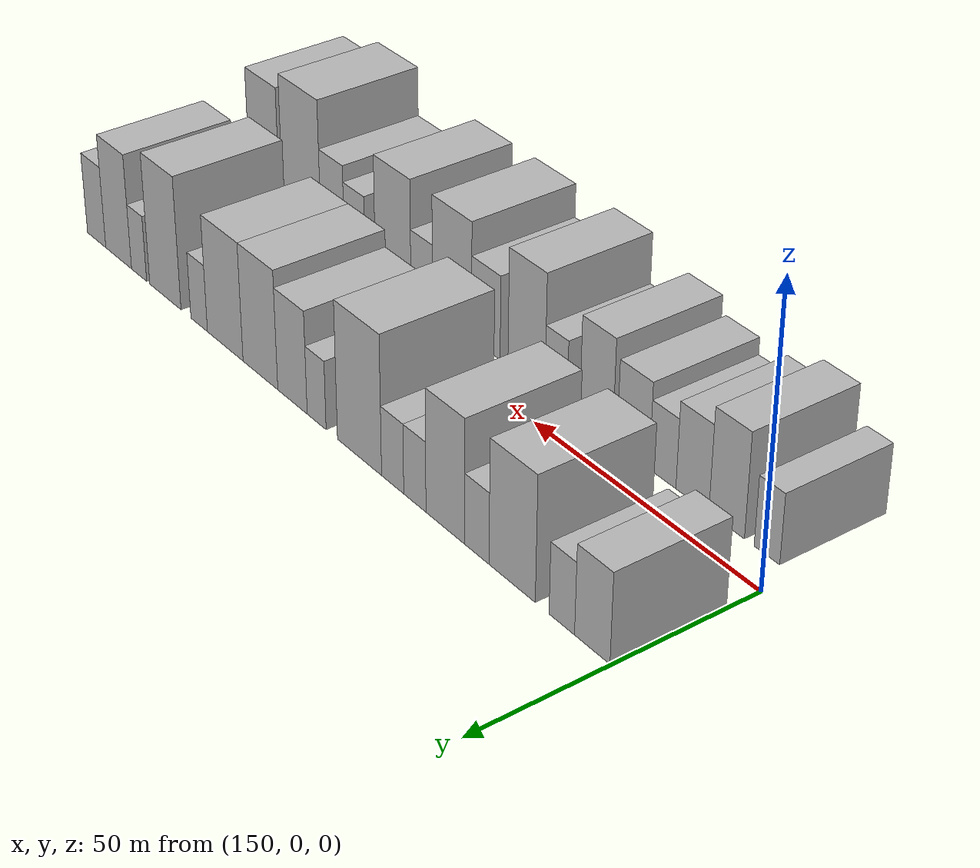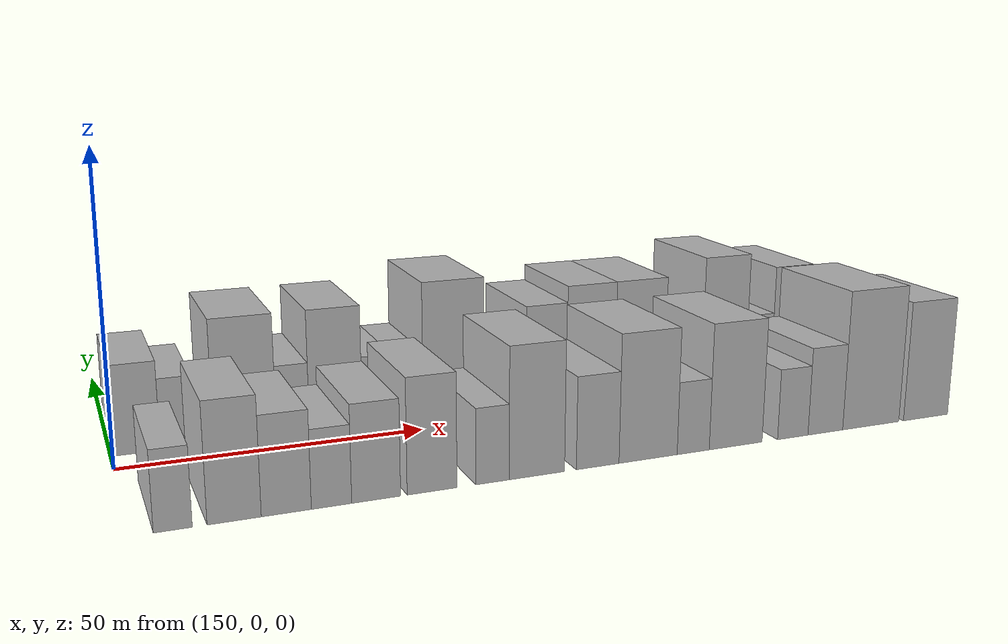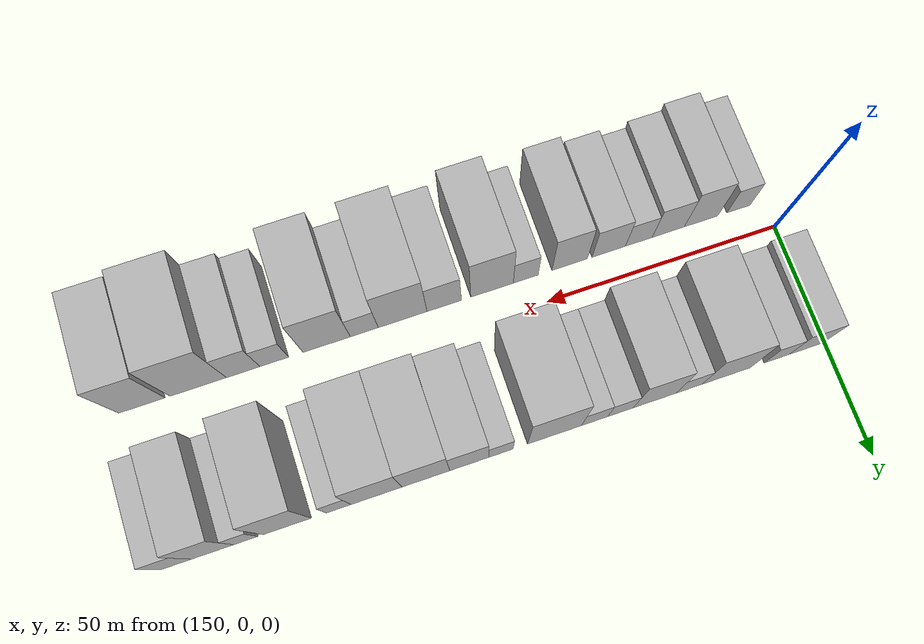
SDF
<sdf version="1.6">
 <world name="default">
  <model name="building_17">
   <static>1</static>
   <pose>153.9549 16.0000 0 0.000000 0.000000 1.570796</pose>
   <link name="link">
    <pose>0 0 7.50 0 0 0</pose>
    <collision name="collision"><geometry><box><size>20.0000 7.3951 15.0000</size></box></geometry></collision>
    <visual name="visual">
     <cast_shadows>0</cast_shadows>
     <geometry><box><size>20.0000 7.3951 15.0000</size></box></geometry>
     <material>
      <script>
       <uri>model://HANNAS_wall/materials/scripts</uri>
       <uri>model://HANNAS_wall/materials/textures</uri>
       <name>vrc/HANNAS_wall</name>
      </script>
     </material>
    </visual>
   </link>
  </model>
  <model name="building_18">
   <static>1</static>
   <pose>160.3797 16.0000 0 0.000000 0.000000 1.570796</pose>
   <link name="link">
    <pose>0 0 6.00 0 0 0</pose>
    <collision name="collision"><geometry><box><size>20.0000 5.4544 12.0000</size></box></geometry></collision>
    <visual name="visual">
     <cast_shadows>0</cast_shadows>
     <geometry><box><size>20.0000 5.4544 12.0000</size></box></geometry>
     <material>
      <script>
       <uri>model://HANNAS_wall/materials/scripts</uri>
       <uri>model://HANNAS_wall/materials/textures</uri>
       <name>vrc/HANNAS_wall</name>
      </script>
     </material>
    </visual>
   </link>
  </model>
  <model name="building_19">
   <static>1</static>
   <pose>171.2821 16.0000 0 0.000000 0.000000 1.570796</pose>
   <link name="link">
    <pose>0 0 10.50 0 0 0</pose>
    <collision name="collision"><geometry><box><size>20.0000 10.3504 21.0000</size></box></geometry></collision>
    <visual name="visual">
     <cast_shadows>0</cast_shadows>
     <geometry><box><size>20.0000 10.3504 21.0000</size></box></geometry>
     <material>
      <script>
       <uri>model://HANNAS_wall/materials/scripts</uri>
       <uri>model://HANNAS_wall/materials/textures</uri>
       <name>vrc/HANNAS_wall</name>
      </script>
     </material>
    </visual>
   </link>
  </model>
  <model name="building_20">
   <static>1</static>
   <pose>179.2618 16.0000 0 0.000000 0.000000 1.570796</pose>
   <link name="link">
    <pose>0 0 6.00 0 0 0</pose>
    <collision name="collision"><geometry><box><size>20.0000 5.6091 12.0000</size></box></geometry></collision>
    <visual name="visual">
     <cast_shadows>0</cast_shadows>
     <geometry><box><size>20.0000 5.6091 12.0000</size></box></geometry>
     <material>
      <script>
       <uri>model://HANNAS_wall/materials/scripts</uri>
       <uri>model://HANNAS_wall/materials/textures</uri>
       <name>vrc/HANNAS_wall</name>
      </script>
     </material>
    </visual>
   </link>
  </model>
  <model name="building_21">
   <static>1</static>
   <pose>186.6494 16.0000 0 0.000000 0.000000 1.570796</pose>
   <link name="link">
    <pose>0 0 10.50 0 0 0</pose>
    <collision name="collision"><geometry><box><size>20.0000 9.1661 21.0000</size></box></geometry></collision>
    <visual name="visual">
     <cast_shadows>0</cast_shadows>
     <geometry><box><size>20.0000 9.1661 21.0000</size></box></geometry>
     <material>
      <script>
       <uri>model://HANNAS_wall/materials/scripts</uri>
       <uri>model://HANNAS_wall/materials/textures</uri>
       <name>vrc/HANNAS_wall</name>
      </script>
     </material>
    </visual>
   </link>
  </model>
  <model name="building_22">
   <static>1</static>
   <pose>193.9422 16.0000 0 0.000000 0.000000 1.570796</pose>
   <link name="link">
    <pose>0 0 6.00 0 0 0</pose>
    <collision name="collision"><geometry><box><size>20.0000 5.4194 12.0000</size></box></geometry></collision>
    <visual name="visual">
     <cast_shadows>0</cast_shadows>
     <geometry><box><size>20.0000 5.4194 12.0000</size></box></geometry>
     <material>
      <script>
       <uri>model://HANNAS_wall/materials/scripts</uri>
       <uri>model://HANNAS_wall/materials/textures</uri>
       <name>vrc/HANNAS_wall</name>
      </script>
     </material>
    </visual>
   </link>
  </model>
  <model name="building_23">
   <static>1</static>
   <pose>199.4075 16.0000 0 0.000000 0.000000 1.570796</pose>
   <link name="link">
    <pose>0 0 6.00 0 0 0</pose>
    <collision name="collision"><geometry><box><size>20.0000 5.5114 12.0000</size></box></geometry></collision>
    <visual name="visual">
     <cast_shadows>0</cast_shadows>
     <geometry><box><size>20.0000 5.5114 12.0000</size></box></geometry>
     <material>
      <script>
       <uri>model://HANNAS_wall/materials/scripts</uri>
       <uri>model://HANNAS_wall/materials/textures</uri>
       <name>vrc/HANNAS_wall</name>
      </script>
     </material>
    </visual>
   </link>
  </model>
  <model name="building_24">
   <static>1</static>
   <pose>207.8202 16.0000 0 0.000000 0.000000 1.570796</pose>
   <link name="link">
    <pose>0 0 12.00 0 0 0</pose>
    <collision name="collision"><geometry><box><size>20.0000 11.3139 24.0000</size></box></geometry></collision>
    <visual name="visual">
     <cast_shadows>0</cast_shadows>
     <geometry><box><size>20.0000 11.3139 24.0000</size></box></geometry>
     <material>
      <script>
       <uri>model://HANNAS_wall/materials/scripts</uri>
       <uri>model://HANNAS_wall/materials/textures</uri>
       <name>vrc/HANNAS_wall</name>
      </script>
     </material>
    </visual>
   </link>
  </model>
  <model name="building_25">
   <static>1</static>
   <pose>219.0032 16.0000 0 0.000000 0.000000 1.570796</pose>
   <link name="link">
    <pose>0 0 6.00 0 0 0</pose>
    <collision name="collision"><geometry><box><size>20.0000 5.0522 12.0000</size></box></geometry></collision>
    <visual name="visual">
     <cast_shadows>0</cast_shadows>
     <geometry><box><size>20.0000 5.0522 12.0000</size></box></geometry>
     <material>
      <script>
       <uri>model://HANNAS_wall/materials/scripts</uri>
       <uri>model://HANNAS_wall/materials/textures</uri>
       <name>vrc/HANNAS_wall</name>
      </script>
     </material>
    </visual>
   </link>
  </model>
  <model name="building_26">
   <static>1</static>
   <pose>225.5476 16.0000 0 0.000000 0.000000 1.570796</pose>
   <link name="link">
    <pose>0 0 9.00 0 0 0</pose>
    <collision name="collision"><geometry><box><size>20.0000 8.0365 18.0000</size></box></geometry></collision>
    <visual name="visual">
     <cast_shadows>0</cast_shadows>
     <geometry><box><size>20.0000 8.0365 18.0000</size></box></geometry>
     <material>
      <script>
       <uri>model://HANNAS_wall/materials/scripts</uri>
       <uri>model://HANNAS_wall/materials/textures</uri>
       <name>vrc/HANNAS_wall</name>
      </script>
     </material>
    </visual>
   </link>
  </model>
  <model name="building_27">
   <static>1</static>
   <pose>234.4667 16.0000 0 0.000000 0.000000 1.570796</pose>
   <link name="link">
    <pose>0 0 10.50 0 0 0</pose>
    <collision name="collision"><geometry><box><size>20.0000 9.8018 21.0000</size></box></geometry></collision>
    <visual name="visual">
     <cast_shadows>0</cast_shadows>
     <geometry><box><size>20.0000 9.8018 21.0000</size></box></geometry>
     <material>
      <script>
       <uri>model://HANNAS_wall/materials/scripts</uri>
       <uri>model://HANNAS_wall/materials/textures</uri>
       <name>vrc/HANNAS_wall</name>
      </script>
     </material>
    </visual>
   </link>
  </model>
  <model name="building_28">
   <static>1</static>
   <pose>244.5770 16.0000 0 0.000000 0.000000 1.570796</pose>
   <link name="link">
    <pose>0 0 10.50 0 0 0</pose>
    <collision name="collision"><geometry><box><size>20.0000 10.4188 21.0000</size></box></geometry></collision>
    <visual name="visual">
     <cast_shadows>0</cast_shadows>
     <geometry><box><size>20.0000 10.4188 21.0000</size></box></geometry>
     <material>
      <script>
       <uri>model://HANNAS_wall/materials/scripts</uri>
       <uri>model://HANNAS_wall/materials/textures</uri>
       <name>vrc/HANNAS_wall</name>
      </script>
     </material>
    </visual>
   </link>
  </model>
  <model name="building_29">
   <static>1</static>
   <pose>252.2715 16.0000 0 0.000000 0.000000 1.570796</pose>
   <link name="link">
    <pose>0 0 6.00 0 0 0</pose>
    <collision name="collision"><geometry><box><size>20.0000 4.9702 12.0000</size></box></geometry></collision>
    <visual name="visual">
     <cast_shadows>0</cast_shadows>
     <geometry><box><size>20.0000 4.9702 12.0000</size></box></geometry>
     <material>
      <script>
       <uri>model://HANNAS_wall/materials/scripts</uri>
       <uri>model://HANNAS_wall/materials/textures</uri>
       <name>vrc/HANNAS_wall</name>
      </script>
     </material>
    </visual>
   </link>
  </model>
  <model name="building_30">
   <static>1</static>
   <pose>262.6057 16.0000 0 0.000000 0.000000 1.570796</pose>
   <link name="link">
    <pose>0 0 12.00 0 0 0</pose>
    <collision name="collision"><geometry><box><size>20.0000 9.6982 24.0000</size></box></geometry></collision>
    <visual name="visual">
     <cast_shadows>0</cast_shadows>
     <geometry><box><size>20.0000 9.6982 24.0000</size></box></geometry>
     <material>
      <script>
       <uri>model://HANNAS_wall/materials/scripts</uri>
       <uri>model://HANNAS_wall/materials/textures</uri>
       <name>vrc/HANNAS_wall</name>
      </script>
     </material>
    </visual>
   </link>
  </model>
  <model name="building_31">
   <static>1</static>
   <pose>270.8627 16.0000 0 0.000000 0.000000 1.570796</pose>
   <link name="link">
    <pose>0 0 6.00 0 0 0</pose>
    <collision name="collision"><geometry><box><size>20.0000 4.8157 12.0000</size></box></geometry></collision>
    <visual name="visual">
     <cast_shadows>0</cast_shadows>
     <geometry><box><size>20.0000 4.8157 12.0000</size></box></geometry>
     <material>
      <script>
       <uri>model://HANNAS_wall/materials/scripts</uri>
       <uri>model://HANNAS_wall/materials/textures</uri>
       <name>vrc/HANNAS_wall</name>
      </script>
     </material>
    </visual>
   </link>
  </model>
  <model name="building_32">
   <static>1</static>
   <pose>277.4708 16.0000 0 0.000000 0.000000 1.570796</pose>
   <link name="link">
    <pose>0 0 10.50 0 0 0</pose>
    <collision name="collision"><geometry><box><size>20.0000 8.4004 21.0000</size></box></geometry></collision>
    <visual name="visual">
     <cast_shadows>0</cast_shadows>
     <geometry><box><size>20.0000 8.4004 21.0000</size></box></geometry>
     <material>
      <script>
       <uri>model://HANNAS_wall/materials/scripts</uri>
       <uri>model://HANNAS_wall/materials/textures</uri>
       <name>vrc/HANNAS_wall</name>
      </script>
     </material>
    </visual>
   </link>
  </model>
  <model name="building_33">
   <static>1</static>
   <pose>284.7169 16.0000 0 0.000000 0.000000 1.570796</pose>
   <link name="link">
    <pose>0 0 7.50 0 0 0</pose>
    <collision name="collision"><geometry><box><size>20.0000 6.0919 15.0000</size></box></geometry></collision>
    <visual name="visual">
     <cast_shadows>0</cast_shadows>
     <geometry><box><size>20.0000 6.0919 15.0000</size></box></geometry>
     <material>
      <script>
       <uri>model://HANNAS_wall/materials/scripts</uri>
       <uri>model://HANNAS_wall/materials/textures</uri>
       <name>vrc/HANNAS_wall</name>
      </script>
     </material>
    </visual>
   </link>
  </model>
  <model name="building_49">
   <static>1</static>
   <pose>155.5949 -16.0000 0 0.000000 0.000000 1.570796</pose>
   <link name="link">
    <pose>0 0 6.00 0 0 0</pose>
    <collision name="collision"><geometry><box><size>20.0000 5.2284 12.0000</size></box></geometry></collision>
    <visual name="visual">
     <cast_shadows>0</cast_shadows>
     <geometry><box><size>20.0000 5.2284 12.0000</size></box></geometry>
     <material>
      <script>
       <uri>model://HANNAS_wall/materials/scripts</uri>
       <uri>model://HANNAS_wall/materials/textures</uri>
       <name>vrc/HANNAS_wall</name>
      </script>
     </material>
    </visual>
   </link>
  </model>
  <model name="building_50">
   <static>1</static>
   <pose>163.9614 -16.0000 0 0.000000 0.000000 1.570796</pose>
   <link name="link">
    <pose>0 0 9.00 0 0 0</pose>
    <collision name="collision"><geometry><box><size>20.0000 7.5047 18.0000</size></box></geometry></collision>
    <visual name="visual">
     <cast_shadows>0</cast_shadows>
     <geometry><box><size>20.0000 7.5047 18.0000</size></box></geometry>
     <material>
      <script>
       <uri>model://HANNAS_wall/materials/scripts</uri>
       <uri>model://HANNAS_wall/materials/textures</uri>
       <name>vrc/HANNAS_wall</name>
      </script>
     </material>
    </visual>
   </link>
  </model>
  <model name="building_51">
   <static>1</static>
   <pose>171.2851 -16.0000 0 0.000000 0.000000 1.570796</pose>
   <link name="link">
    <pose>0 0 7.50 0 0 0</pose>
    <collision name="collision"><geometry><box><size>20.0000 7.1426 15.0000</size></box></geometry></collision>
    <visual name="visual">
     <cast_shadows>0</cast_shadows>
     <geometry><box><size>20.0000 7.1426 15.0000</size></box></geometry>
     <material>
      <script>
       <uri>model://HANNAS_wall/materials/scripts</uri>
       <uri>model://HANNAS_wall/materials/textures</uri>
       <name>vrc/HANNAS_wall</name>
      </script>
     </material>
    </visual>
   </link>
  </model>
  <model name="building_52">
   <static>1</static>
   <pose>177.8125 -16.0000 0 0.000000 0.000000 1.570796</pose>
   <link name="link">
    <pose>0 0 6.00 0 0 0</pose>
    <collision name="collision"><geometry><box><size>20.0000 5.9122 12.0000</size></box></geometry></collision>
    <visual name="visual">
     <cast_shadows>0</cast_shadows>
     <geometry><box><size>20.0000 5.9122 12.0000</size></box></geometry>
     <material>
      <script>
       <uri>model://HANNAS_wall/materials/scripts</uri>
       <uri>model://HANNAS_wall/materials/textures</uri>
       <name>vrc/HANNAS_wall</name>
      </script>
     </material>
    </visual>
   </link>
  </model>
  <model name="building_53">
   <static>1</static>
   <pose>184.4439 -16.0000 0 0.000000 0.000000 1.570796</pose>
   <link name="link">
    <pose>0 0 7.50 0 0 0</pose>
    <collision name="collision"><geometry><box><size>20.0000 7.3506 15.0000</size></box></geometry></collision>
    <visual name="visual">
     <cast_shadows>0</cast_shadows>
     <geometry><box><size>20.0000 7.3506 15.0000</size></box></geometry>
     <material>
      <script>
       <uri>model://HANNAS_wall/materials/scripts</uri>
       <uri>model://HANNAS_wall/materials/textures</uri>
       <name>vrc/HANNAS_wall</name>
      </script>
     </material>
    </visual>
   </link>
  </model>
  <model name="building_54">
   <static>1</static>
   <pose>192.9947 -16.0000 0 0.000000 0.000000 1.570796</pose>
   <link name="link">
    <pose>0 0 9.00 0 0 0</pose>
    <collision name="collision"><geometry><box><size>20.0000 7.7510 18.0000</size></box></geometry></collision>
    <visual name="visual">
     <cast_shadows>0</cast_shadows>
     <geometry><box><size>20.0000 7.7510 18.0000</size></box></geometry>
     <material>
      <script>
       <uri>model://HANNAS_wall/materials/scripts</uri>
       <uri>model://HANNAS_wall/materials/textures</uri>
       <name>vrc/HANNAS_wall</name>
      </script>
     </material>
    </visual>
   </link>
  </model>
  <model name="building_55">
   <static>1</static>
   <pose>202.5693 -16.0000 0 0.000000 0.000000 1.570796</pose>
   <link name="link">
    <pose>0 0 6.00 0 0 0</pose>
    <collision name="collision"><geometry><box><size>20.0000 5.3980 12.0000</size></box></geometry></collision>
    <visual name="visual">
     <cast_shadows>0</cast_shadows>
     <geometry><box><size>20.0000 5.3980 12.0000</size></box></geometry>
     <material>
      <script>
       <uri>model://HANNAS_wall/materials/scripts</uri>
       <uri>model://HANNAS_wall/materials/textures</uri>
       <name>vrc/HANNAS_wall</name>
      </script>
     </material>
    </visual>
   </link>
  </model>
  <model name="building_56">
   <static>1</static>
   <pose>209.8584 -16.0000 0 0.000000 0.000000 1.570796</pose>
   <link name="link">
    <pose>0 0 10.50 0 0 0</pose>
    <collision name="collision"><geometry><box><size>20.0000 9.1803 21.0000</size></box></geometry></collision>
    <visual name="visual">
     <cast_shadows>0</cast_shadows>
     <geometry><box><size>20.0000 9.1803 21.0000</size></box></geometry>
     <material>
      <script>
       <uri>model://HANNAS_wall/materials/scripts</uri>
       <uri>model://HANNAS_wall/materials/textures</uri>
       <name>vrc/HANNAS_wall</name>
      </script>
     </material>
    </visual>
   </link>
  </model>
  <model name="building_57">
   <static>1</static>
   <pose>220.1304 -16.0000 0 0.000000 0.000000 1.570796</pose>
   <link name="link">
    <pose>0 0 7.50 0 0 0</pose>
    <collision name="collision"><geometry><box><size>20.0000 7.3638 15.0000</size></box></geometry></collision>
    <visual name="visual">
     <cast_shadows>0</cast_shadows>
     <geometry><box><size>20.0000 7.3638 15.0000</size></box></geometry>
     <material>
      <script>
       <uri>model://HANNAS_wall/materials/scripts</uri>
       <uri>model://HANNAS_wall/materials/textures</uri>
       <name>vrc/HANNAS_wall</name>
      </script>
     </material>
    </visual>
   </link>
  </model>
  <model name="building_58">
   <static>1</static>
   <pose>228.9992 -16.0000 0 0.000000 0.000000 1.570796</pose>
   <link name="link">
    <pose>0 0 10.50 0 0 0</pose>
    <collision name="collision"><geometry><box><size>20.0000 10.3736 21.0000</size></box></geometry></collision>
    <visual name="visual">
     <cast_shadows>0</cast_shadows>
     <geometry><box><size>20.0000 10.3736 21.0000</size></box></geometry>
     <material>
      <script>
       <uri>model://HANNAS_wall/materials/scripts</uri>
       <uri>model://HANNAS_wall/materials/textures</uri>
       <name>vrc/HANNAS_wall</name>
      </script>
     </material>
    </visual>
   </link>
  </model>
  <model name="building_59">
   <static>1</static>
   <pose>237.1295 -16.0000 0 0.000000 0.000000 1.570796</pose>
   <link name="link">
    <pose>0 0 6.00 0 0 0</pose>
    <collision name="collision"><geometry><box><size>20.0000 5.8871 12.0000</size></box></geometry></collision>
    <visual name="visual">
     <cast_shadows>0</cast_shadows>
     <geometry><box><size>20.0000 5.8871 12.0000</size></box></geometry>
     <material>
      <script>
       <uri>model://HANNAS_wall/materials/scripts</uri>
       <uri>model://HANNAS_wall/materials/textures</uri>
       <name>vrc/HANNAS_wall</name>
      </script>
     </material>
    </visual>
   </link>
  </model>
  <model name="building_60">
   <static>1</static>
   <pose>245.0636 -16.0000 0 0.000000 0.000000 1.570796</pose>
   <link name="link">
    <pose>0 0 10.50 0 0 0</pose>
    <collision name="collision"><geometry><box><size>20.0000 9.9809 21.0000</size></box></geometry></collision>
    <visual name="visual">
     <cast_shadows>0</cast_shadows>
     <geometry><box><size>20.0000 9.9809 21.0000</size></box></geometry>
     <material>
      <script>
       <uri>model://HANNAS_wall/materials/scripts</uri>
       <uri>model://HANNAS_wall/materials/textures</uri>
       <name>vrc/HANNAS_wall</name>
      </script>
     </material>
    </visual>
   </link>
  </model>
  <model name="building_61">
   <static>1</static>
   <pose>256.0423 -16.0000 0 0.000000 0.000000 1.570796</pose>
   <link name="link">
    <pose>0 0 6.00 0 0 0</pose>
    <collision name="collision"><geometry><box><size>20.0000 5.9766 12.0000</size></box></geometry></collision>
    <visual name="visual">
     <cast_shadows>0</cast_shadows>
     <geometry><box><size>20.0000 5.9766 12.0000</size></box></geometry>
     <material>
      <script>
       <uri>model://HANNAS_wall/materials/scripts</uri>
       <uri>model://HANNAS_wall/materials/textures</uri>
       <name>vrc/HANNAS_wall</name>
      </script>
     </material>
    </visual>
   </link>
  </model>
  <model name="building_62">
   <static>1</static>
   <pose>262.5121 -16.0000 0 0.000000 0.000000 1.570796</pose>
   <link name="link">
    <pose>0 0 7.50 0 0 0</pose>
    <collision name="collision"><geometry><box><size>20.0000 6.9629 15.0000</size></box></geometry></collision>
    <visual name="visual">
     <cast_shadows>0</cast_shadows>
     <geometry><box><size>20.0000 6.9629 15.0000</size></box></geometry>
     <material>
      <script>
       <uri>model://HANNAS_wall/materials/scripts</uri>
       <uri>model://HANNAS_wall/materials/textures</uri>
       <name>vrc/HANNAS_wall</name>
      </script>
     </material>
    </visual>
   </link>
  </model>
  <model name="building_63">
   <static>1</static>
   <pose>271.8096 -16.0000 0 0.000000 0.000000 1.570796</pose>
   <link name="link">
    <pose>0 0 12.00 0 0 0</pose>
    <collision name="collision"><geometry><box><size>20.0000 11.6322 24.0000</size></box></geometry></collision>
    <visual name="visual">
     <cast_shadows>0</cast_shadows>
     <geometry><box><size>20.0000 11.6322 24.0000</size></box></geometry>
     <material>
      <script>
       <uri>model://HANNAS_wall/materials/scripts</uri>
       <uri>model://HANNAS_wall/materials/textures</uri>
       <name>vrc/HANNAS_wall</name>
      </script>
     </material>
    </visual>
   </link>
  </model>
  <model name="building_64">
   <static>1</static>
   <pose>283.3655 -16.0000 0 0.000000 0.000000 1.570796</pose>
   <link name="link">
    <pose>0 0 10.50 0 0 0</pose>
    <collision name="collision"><geometry><box><size>20.0000 9.4795 21.0000</size></box></geometry></collision>
    <visual name="visual">
     <cast_shadows>0</cast_shadows>
     <geometry><box><size>20.0000 9.4795 21.0000</size></box></geometry>
     <material>
      <script>
       <uri>model://HANNAS_wall/materials/scripts</uri>
       <uri>model://HANNAS_wall/materials/textures</uri>
       <name>vrc/HANNAS_wall</name>
      </script>
     </material>
    </visual>
   </link>
  </model>
 </world>
</sdf>
